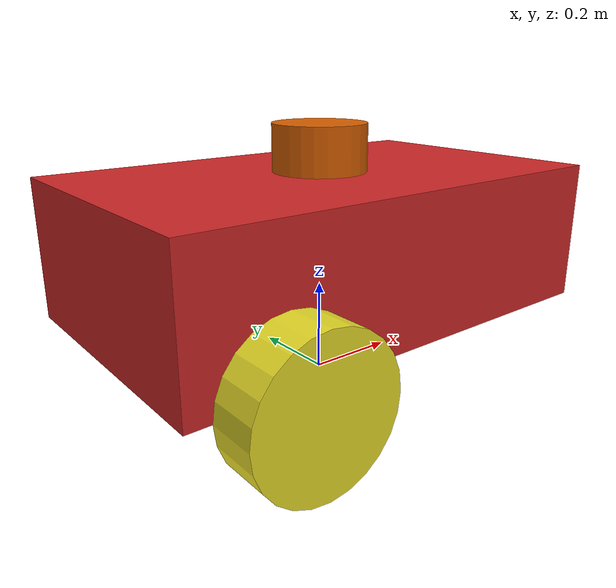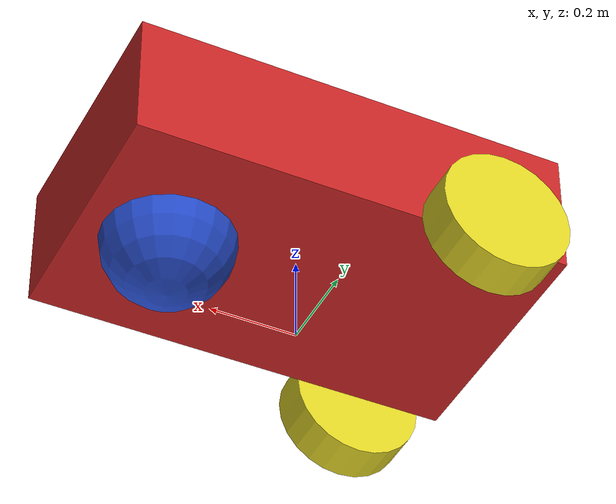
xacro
<?xml version="1.0"?>

<robot name="differential_drive_robot"
xmlns:xacro="http://www.ros.org/wiki/xacro">

<!-- Geometry and Constants                                      -->

<!-- Pi constant -->
<xacro:property name="pi_const" value="3.14159265"/>

<!-- Body dimensions -->
<xacro:property name="a" value="1"/>
<xacro:property name="b" value="0.3"/>
<xacro:property name="c" value="0.6"/>

<!-- Wheel and caster dimensions -->
<!-- Wheel and caster radius -->
<xacro:property name="r" value="0.15"/>

<!-- Wheel width -->
<xacro:property name="d" value="0.1"/>

<xacro:property name="s1" value="${b/2+r}"/>
<xacro:property name="s2" value="${2*r}"/>
<xacro:property name="s3" value="${2*r}"/>
<xacro:property name="s4" value="${c/2+d/2}"/>

<!--                Mass and inertia                             -->

<!-- Material density -->
<!-- Body material density -->

<xacro:property name="m1" value="40.0"/>
<xacro:property name="m2" value="2.0"/>
<xacro:property name="m3" value="0.5"/>

<!-- Moments of inertia of the robot body -->
<xacro:property name="Ix_body" value="${(1/12)*m1*(b*b+c*c)}" />
<xacro:property name="Iy_body" value="${(1/12)*m1*(a*a+c*c)}" />
<xacro:property name="Iz_body" value="${(1/12)*m1*(a*a+b*b)}" />

<!-- Moments of inertia of the wheel -->
<xacro:property name="Iz_wheel" value="${0.5*m2*r*r}" />
<xacro:property name="I_wheel" value="${(1.0/12.0)*m2*(3.0*r*r+d*d)}" />

<!-- Moments of inertia of the caster sphere -->
<xacro:property name="I_caster" value="${(2.0/5.0)*m3*r*r}" />

<!-- This macro defines the complete inertial section of the robot body -->
<!-- It is used later in the code -->
<xacro:macro name="inertia_body">

  <inertial>

    <!-- Displacement and orientation of the center of the mass frame of the link with respect to -->
    <origin rpy="0 0 0" xyz="0 0 ${s1}"/>
    <mass value="${m1}"/>
    <inertia
      ixx="${Ix_body}"
      ixy="0.0"
      ixz="0.0"
      iyy="${Iy_body}"
      iyz="0"
      izz="${Iz_body}" />
    </inertial>
</xacro:macro>

<!-- This macro defines the complete inertial section of the wheel -->
<!-- It is used later in the code -->

<xacro:macro name="inertia_wheel">
    <inertial>
    <origin rpy="1.570795 0 0" xyz="0 0 0"/>
    <mass value="${m2}"/>
    <inertia
      ixx="${I_wheel}"
      ixy="0.0"
      ixz="0.0"
      iyy="${I_wheel}"
      iyz="0"
      izz="${Iz_wheel}" />
    </inertial>
</xacro:macro>

<!-- This macro defines the complete inertial section of the caster -->
<!-- It is used later in the code -->

<xacro:macro name="inertia_caster">
    <inertial>
    <origin rpy="0 0 0" xyz="0 0 0"/>
    <mass value="${m3}"/>
    <inertia
      ixx="${I_caster}"
      ixy="0.0"
      ixz="0.0"
      iyy="${I_caster}"
      iyz="0"
      izz="${I_caster}" />
    </inertial>
</xacro:macro>

<!-- launch args (defaults = original robot); added for the full system, ported from Paper_ws -->
<xacro:arg name="gyro_bias_z" default="0.0000075"/>
<xacro:arg name="imu_rate" default="50"/>
<xacro:arg name="odom_rate" default="50"/>

<xacro:include filename="$(find mobile_robot)/model/robot.gazebo"/>

<!-- We need to have this link otherwise Gazebo will complain -->

<link name="base_footprint">
</link>

<joint name="body_link_joint" type="fixed">
  <parent link="base_footprint"/>
  <child link="body_link"/>
</joint>

<link name="body_link">
  <visual>
    <geometry>
      <box size="${a} ${c} ${b}" />
    </geometry>

  <!-- Displacement and orientation of the geometric center of the link -->
  <origin rpy="0 0 0" xyz="0 0 ${s1}"/>
  </visual>

  <collision>
    <geometry>
      <box size="${a} ${c} ${b}" />
    </geometry>
    <origin rpy="0 0 0" xyz="0 0 ${s1}"/>
  </collision>

  <xacro:inertia_body />
</link>

<joint name="wheel1_joint" type="continuous">
  <parent link="body_link"/>
  <child link="wheel1_link" />
  <origin xyz="${-s2} ${-s4} ${r}" rpy="0 0 0" />
  <axis xyz="0 1 0"/>
  <limit effort="100" velocity="10"/>
  <dynamics damping="1.0" friction="1.0"/>
</joint>

<link name="wheel1_link">
  <visual>
    <origin rpy="1.570795 0 0" xyz="0 0 0"/>
    <geometry>
      <cylinder length="${d}" radius="${r}"/>
    </geometry>
  </visual>

  <collision>
    <origin rpy="1.570795 0 0" xyz="0 0 0"/>
    <geometry>
      <cylinder length="${d}" radius="${r}"/>
    </geometry>
  </collision>

  <xacro:inertia_wheel />
</link>

<joint name="wheel2_joint" type="continuous">
  <parent link="body_link"/>
  <child link="wheel2_link" />
  <origin xyz="${-s2} ${s4} ${r}" rpy="0 0 0" />
  <axis xyz="0 1 0"/>
  <limit effort="100" velocity="10"/>
  <dynamics damping="1.0" friction="1.0"/>
</joint>

<link name="wheel2_link">
  <visual>
    <origin rpy="1.570795 0 0" xyz="0 0 0"/>
    <geometry>
      <cylinder length="${d}" radius="${r}"/>
    </geometry>
  </visual>

  <collision>
    <origin rpy="1.570795 0 0" xyz="0 0 0"/>
    <geometry>
      <cylinder length="${d}" radius="${r}"/>
    </geometry>
  </collision>
  <xacro:inertia_wheel />
</link>

<joint name="caster_joint" type="fixed">
    <parent link="body_link"/>
    <child link="caster_link"/>
    <origin xyz="${s3} 0 ${r}" rpy="0 0 0"/>
</joint>

<link name="caster_link">
    <visual>
        <origin rpy="0 0 0" xyz="0 0 0"/>
        <geometry>
            <sphere radius="${r}" />
        </geometry>
    </visual>

    <collision>
        <origin rpy="0 0 0" xyz="0 0 0"/>
        <geometry>
            <sphere radius="${r}" />
        </geometry>
    </collision>
    <xacro:inertia_caster />
</link>

<!-- LiDAR Link -->

<joint name="lidar_joint" type="fixed">
    <origin xyz="0.0 0 ${b+r}" rpy="0 0 0"/>
    <parent link="body_link"/>
    <child link="lidar_link"/>
    <axis xyz="0 1 0" rpy="0 0 0"/>
</joint>

<link name='lidar_link'>
    <visual>
        <origin xyz="0 0 0.05" rpy="0 0 0"/>
        <geometry>
            <cylinder length="0.1" radius="0.1"/>
        </geometry>
    </visual>

    <collision name='collision'>
     <origin xyz="0 0 0.05" rpy="0 0 0"/>
     <geometry>
        <cylinder length="0.1" radius="0.1"/>
    </geometry>
    </collision>

    <inertial>
     <mass value="1e-6"/>
     <origin xyz="0 0 0" rpy="0 0 0"/>
     <inertia ixx="1e-6" ixy="0" ixz="0"
              iyy="1e-6" iyz="0" izz="1e-6"
      />
    </inertial>

</link>

<!-- IMU Link -->

<joint name="imu_joint" type="fixed">
    <parent link="body_link"/>
    <child link="imu_link"/>
    <origin xyz="0 0 ${s1 + 0.01}" rpy="0 0 0"/>
</joint>

<link name="imu_link">

    <visual>
        <origin xyz="0 0 0" rpy="0 0 0"/>
        <geometry>
            <box size="0.05 0.05 0.02"/>
        </geometry>
    </visual>

    <collision>
        <origin xyz="0 0 0" rpy="0 0 0"/>
        <geometry>
            <box size="0.05 0.05 0.02"/>
        </geometry>
    </collision>

    <inertial>
        <mass value="0.001"/>
        <origin xyz="0 0 0" rpy="0 0 0"/>
        <inertia
            ixx="1e-6"
            ixy="0"
            ixz="0"
            iyy="1e-6"
            iyz="0"
            izz="1e-6"/>
    </inertial>

</link>

</robot>
